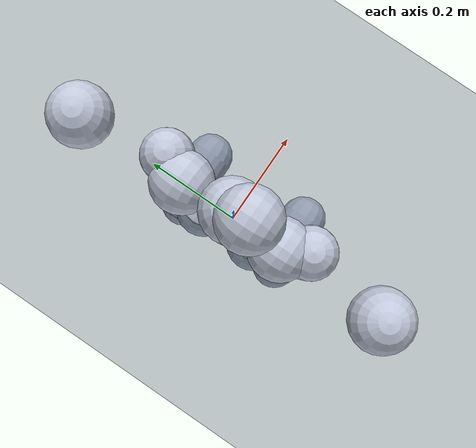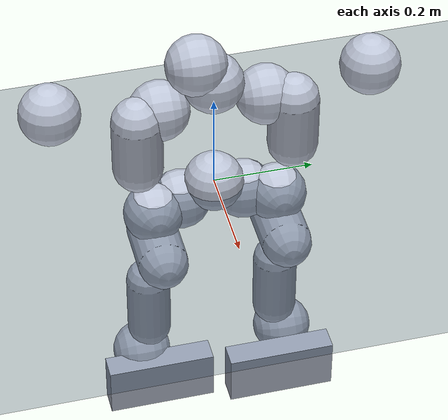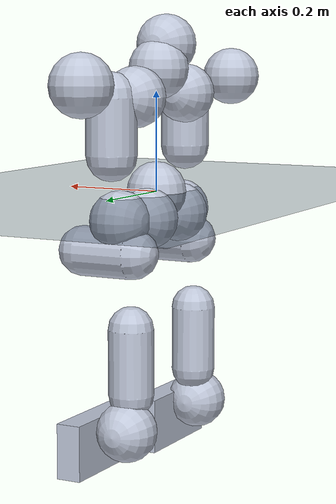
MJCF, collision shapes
<mujoco model="MOS_VIRTUAL_WAIST_PREVIEW_ONLY">
  <compiler meshdir="../../../robots/mos/retargeting/meshes" angle="radian" autolimits="true" />
  <asset>
    <texture type="skybox" builtin="gradient" rgb1="0.3 0.5 0.7" rgb2="0 0 0" width="512" height="512" />
    <texture name="texplane" type="2d" builtin="checker" rgb1=".2 .3 .4" rgb2=".1 0.15 0.2" width="512" height="512" mark="cross" markrgb=".8 .8 .8" />
    <material name="matplane" reflectance="0.3" texture="texplane" texrepeat="1 1" texuniform="true" />
    <mesh name="body" file="body.stl" scale="1 1 1" />
    <mesh name="neck" file="neck.stl" scale="1 1 1" />
    <mesh name="head" file="head.stl" scale="1 1 1" />
    <mesh name="Rshoulder" file="Rshoulder.stl" scale="1 1 1" />
    <mesh name="Rarm" file="Rarm.stl" scale="1 1 1" />
    <mesh name="Rhand" file="Rhand.stl" scale="1 1 1" />
    <mesh name="Lshoulder" file="Lshoulder.stl" scale="1 1 1" />
    <mesh name="Larm" file="Larm.stl" scale="1 1 1" />
    <mesh name="Lhand" file="Lhand.stl" scale="1 1 1" />
    <mesh name="Rhip" file="Rhip.stl" scale="1 1 1" />
    <mesh name="Rlap" file="Rlap.stl" scale="1 1 1" />
    <mesh name="Rleg1" file="Rleg1.stl" scale="1 1 1" />
    <mesh name="Rleg2" file="Rleg2.stl" scale="1 1 1" />
    <mesh name="Rankle" file="Rankle.stl" scale="1 1 1" />
    <mesh name="Rfoot" file="Rfoot.stl" scale="1 1 1" />
    <mesh name="Lhip" file="Lhip.stl" scale="1 1 1" />
    <mesh name="Llap" file="Llap.stl" scale="1 1 1" />
    <mesh name="Lleg1" file="Lleg1.stl" scale="1 1 1" />
    <mesh name="Lleg2" file="Lleg2.stl" scale="1 1 1" />
    <mesh name="Lankle" file="Lankle.stl" scale="1 1 1" />
    <mesh name="Lfoot" file="Lfoot.stl" scale="1 1 1" />
  </asset>
  <worldbody>
    <light directional="true" diffuse=".4 .4 .4" specular="0.1 0.1 0.1" pos="0 0 5.0" dir="0 0 -1" castshadow="false" />
    <light directional="true" diffuse=".6 .6 .6" specular="0.2 0.2 0.2" pos="0 0 4" dir="0 0 -1" />
    <geom name="ground" type="plane" pos="0 0 0" size="0 0 1" material="matplane" contype="1" conaffinity="1" />
    <body name="body">
      <joint name="world_joint" type="free" limited="false" />
      <body name="Rhip" pos="-0.0150000000000001 -0.0645 -0.0466" quat="1.1423625238904151e-15 1.1423625238904192e-15 0.70710678118654879 0.70710678118654624">
        <joint name="b_Rh" type="hinge" axis="0 0 1" limited="false" />
        <inertial pos="0.00165224983746645 -0.000153256597703239 -0.04716983324128" mass="0.447922579537738" fullinertia="0.00033655726061194801 0.00017598429507637101 0.00021248524943445001 6.7341063213898901e-07 -1.5485181902228599e-07 -3.79544774009115e-08" />
        <geom name="Rhip_visual" type="mesh" mesh="Rhip" contype="0" conaffinity="0" group="1" rgba="0.898039215686275 0.917647058823529 0.929411764705882 1" pos="0 0 0" quat="1 0 0 0" />
        <geom type="sphere" size="0.06" contype="1" conaffinity="1" group="3" rgba="0.75 0.78 0.85 1" />
        <body name="Rlap" pos="-0.0275 0 -0.061" quat="0.70710678118654624 0 0.70710678118654879 0">
          <joint name="Rh_Rl" type="hinge" axis="0 0 -1" limited="false" />
          <inertial pos="3.09121089836495E-10 -0.031721697647471 0.000916614078336042" mass="0.175119556314121" fullinertia="0.00015530766992431799 7.5052789038171998e-05 0.000137460344788302 1.87603158621217e-12 3.7950796870698298e-13 -3.48905088975491e-05" />
          <geom name="Rlap_visual" type="mesh" mesh="Rlap" contype="0" conaffinity="0" group="1" rgba="0.898039215686275 0.917647058823529 0.929411764705882 1" pos="0 0 0" quat="1 0 0 0" />
          <geom type="sphere" size="0.06" contype="1" conaffinity="1" group="3" rgba="0.75 0.78 0.85 1" />
          <body name="Rleg1" pos="0 -0.063 0.0280000000000001" quat="1.1423625238904151e-15 1.1423625238904192e-15 0.70710678118654879 0.70710678118654624">
            <joint name="Rl_Rl1" type="hinge" axis="0 0 -1" limited="false" />
            <inertial pos="0.000530354807968397 -0.00413771934599061 -0.0824206235447885" mass="0.966091751905849" fullinertia="0.0016552475519086901 0.00139196745796225 0.00084103918620086497 6.84286273811622e-06 -4.9741362470209701e-05 7.9840999362445995e-05" />
            <geom name="Rleg1_visual" type="mesh" mesh="Rleg1" contype="0" conaffinity="0" group="1" rgba="0.898039215686275 0.917647058823529 0.929411764705882 1" pos="0 0 0" quat="1 0 0 0" />
            <geom type="capsule" fromto="0 0 0 0 -0.11 0" size="0.05" contype="1" conaffinity="1" group="3" rgba="0.75 0.78 0.85 1" />
            <body name="Rleg2" pos="-0.00900000000000004 0 -0.146" quat="0.49999999999999817 0.5 -0.50000000000000178 -0.5">
              <joint name="Rl1_Rl2" type="hinge" axis="0 0 -1" limited="false" />
              <inertial pos="-0.00407191869623438 -0.135567799725998 -0.00123327776602503" mass="0.624084469676422" fullinertia="0.00145322270859193 0.000231800595801017 0.0016491966253583299 0.00017224973098276 -4.1760422675076197e-06 -3.1910326184903697e-05" />
              <geom name="Rleg2_visual" type="mesh" mesh="Rleg2" contype="0" conaffinity="0" group="1" rgba="0.898039215686275 0.917647058823529 0.929411764705882 1" pos="0 0 0" quat="1 0 0 0" />
              <geom type="capsule" fromto="0 0 0 0 -0.13 0" size="0.045" contype="1" conaffinity="1" group="3" rgba="0.75 0.78 0.85 1" />
              <body name="Rankle" pos="0 -0.2 0.0177999999999997" quat="1 0 0 0">
                <joint name="Rl2_Ra" type="hinge" axis="0 0 -1" limited="false" />
                <inertial pos="0.0321512482443131 -4.59865812096893E-10 -0.00303590911349036" mass="0.187524858365076" fullinertia="8.4358134856170103e-05 0.000197060970011504 0.00017685220514037899 -5.5489140558758601e-12 -5.1699062408221698e-05 4.7559976232924001e-12" />
                <geom name="Rankle_visual" type="mesh" mesh="Rankle" contype="0" conaffinity="0" group="1" rgba="0.792156862745098 0.819607843137255 0.933333333333333 1" pos="0 0 0" quat="1 0 0 0" />
                <geom type="sphere" size="0.06" contype="1" conaffinity="1" group="3" rgba="0.75 0.78 0.85 1" />
                <body name="Rfoot" pos="0.0689999999999583 0 -0.0259999999999973" quat="0.70710678118654624 0 0.70710678118654879 0">
                  <joint name="Ra_Rf" type="hinge" axis="0 0 1" limited="false" />
                  <inertial pos="8.61075291624935E-09 -0.0355878322875397 0.0190508449468564" mass="0.444249339436953" fullinertia="0.00048487415666383099 0.00060095099150306601 0.00032562953876197001 -1.04013978438541e-09 8.1792295408894495e-12 3.7593433377245e-06" />
                  <geom name="Rfoot_visual" type="mesh" mesh="Rfoot" contype="0" conaffinity="0" group="1" rgba="0.898039215686275 0.917647058823529 0.929411764705882 1" pos="0 0 0" quat="1 0 0 0" />
                  <geom type="box" size="0.11 0.055 0.025" pos="0 -0.035 -0.015" contype="1" conaffinity="1" group="3" rgba="0.75 0.78 0.85 1" />
                </body>
              </body>
            </body>
          </body>
        </body>
      </body>
      <body name="Lhip" pos="-0.0150000000000001 0.0645 -0.0466" quat="1.1423625238904151e-15 1.1423625238904192e-15 0.70710678118654879 0.70710678118654624">
        <joint name="b_Lh" type="hinge" axis="0 0 -1" limited="false" />
        <inertial pos="0.00165224894900179 -7.3220696434062E-05 0.0471698378385199" mass="0.447922591167837" fullinertia="0.00033655726870089701 0.000175984305860162 0.00021248524919222 6.7341041985942502e-07 1.54852005222124e-07 4.25225663555847e-08" />
        <geom name="Lhip_visual" type="mesh" mesh="Lhip" contype="0" conaffinity="0" group="1" rgba="0.898039215686275 0.917647058823529 0.929411764705882 1" pos="0 0 0" quat="1 0 0 0" />
        <geom type="sphere" size="0.06" contype="1" conaffinity="1" group="3" rgba="0.75 0.78 0.85 1" />
        <body name="Llap" pos="-0.027499999999988 9.99999999794776E-05 0.0609999999999988" quat="0.70710678118654624 0 0.70710678118654879 0">
          <joint name="Lh_Ll" type="hinge" axis="0 0 -1" limited="false" />
          <inertial pos="3.09119480013109E-10 -0.0317216976474549 0.00091661407832061" mass="0.175119556314121" fullinertia="0.00015530766992431799 7.5052789038171998e-05 0.00013746034478830099 1.8760313957258201e-12 3.79508076653435e-13 -3.48905088975491e-05" />
          <geom name="Llap_visual" type="mesh" mesh="Llap" contype="0" conaffinity="0" group="1" rgba="0.792156862745098 0.819607843137255 0.933333333333333 1" pos="0 0 0" quat="1 0 0 0" />
          <geom type="sphere" size="0.06" contype="1" conaffinity="1" group="3" rgba="0.75 0.78 0.85 1" />
          <body name="Lleg1" pos="0 -0.0629999999999796 0.0279999999999841" quat="1.1423625238904151e-15 1.1423625238904192e-15 0.70710678118654879 0.70710678118654624">
            <joint name="Ll_Ll1" type="hinge" axis="0 0 -1" limited="false" />
            <inertial pos="-0.000535781615046887 -0.00413973081999081 -0.0824206486794982" mass="0.966092683290071" fullinertia="0.0016552176255236601 0.0013919900662713301 0.00084105972713330399 -6.8277847711236304e-06 4.9731479575150298e-05 7.9806780796671406e-05" />
            <geom name="Lleg1_visual" type="mesh" mesh="Lleg1" contype="0" conaffinity="0" group="1" rgba="0.898039215686275 0.917647058823529 0.929411764705882 1" pos="0 0 0" quat="1 0 0 0" />
            <geom type="capsule" fromto="0 0 0 0 -0.11 0" size="0.05" contype="1" conaffinity="1" group="3" rgba="0.75 0.78 0.85 1" />
            <body name="Lleg2" pos="0.00900000000000006 0 -0.146" quat="0.49999999999999817 0.5 0.50000000000000178 0.5">
              <joint name="Ll1_Ll2" type="hinge" axis="0 0 -1" limited="false" />
              <inertial pos="0.0040643776620283 -0.135558974776272 -0.00123327766586004" mass="0.624084469535357" fullinertia="0.0014534887680419501 0.00023153451707469801 0.0016491966058949799 -0.00017220773638180001 4.1760419869312102e-06 -3.1910326286834199e-05" />
              <geom name="Lleg2_visual" type="mesh" mesh="Lleg2" contype="0" conaffinity="0" group="1" rgba="0.898039215686275 0.917647058823529 0.929411764705882 1" pos="0 0 0" quat="1 0 0 0" />
              <geom type="capsule" fromto="0 0 0 0 -0.13 0" size="0.045" contype="1" conaffinity="1" group="3" rgba="0.75 0.78 0.85 1" />
              <body name="Lankle" pos="0 -0.2 0.0177999999999994" quat="1 0 0 0">
                <joint name="Ll2_La" type="hinge" axis="0 0 -1" limited="false" />
                <inertial pos="-0.0321512482442743 6.91723612318285E-05 -0.00313158675555364" mass="0.187524858365075" fullinertia="8.4358134856170306e-05 0.000197060970011504 0.00017685220514037899 -5.5489136908371598e-12 5.1699062408221902e-05 -4.7559975480603202e-12" />
                <geom name="Lankle_visual" type="mesh" mesh="Lankle" contype="0" conaffinity="0" group="1" rgba="0.898039215686275 0.917647058823529 0.929411764705882 1" pos="0 0 0" quat="1 0 0 0" />
                <geom type="sphere" size="0.06" contype="1" conaffinity="1" group="3" rgba="0.75 0.78 0.85 1" />
                <body name="Lfoot" pos="-0.068999999995933 0.00155678563569939 -0.0281533249166232" quat="0.70710678118654624 0 0.70710678118654879 0">
                  <joint name="La_Lf" type="hinge" axis="0 0 -1" limited="false" />
                  <inertial pos="-8.61075105662579E-09 -0.0355878322875431 -0.0190508449499858" mass="0.444249339436954" fullinertia="0.00048487415666383099 0.00060095099150306503 0.00032562953876197099 1.04013978438732e-09 8.1792294030547398e-12 -3.7593433377245699e-06" />
                  <geom name="Lfoot_visual" type="mesh" mesh="Lfoot" contype="0" conaffinity="0" group="1" rgba="0.898039215686275 0.917647058823529 0.929411764705882 1" pos="0 0 0" quat="1 0 0 0" />
                  <geom type="box" size="0.11 0.055 0.025" pos="0 -0.035 -0.015" contype="1" conaffinity="1" group="3" rgba="0.75 0.78 0.85 1" />
                </body>
              </body>
            </body>
          </body>
        </body>
      </body>
      <inertial pos="0 0 0" mass="0.001" diaginertia="0.000001 0.000001 0.000001" />
      <body name="virtual_torso">
        <joint name="virtual_waist" type="ball" limited="false" />
        <inertial pos="-0.0182501208826118 -0.00190049970240902 0.0863636963583089" mass="4.35806806126274" fullinertia="0.012655421444988201 0.0083859111677895802 0.0089536020258598904 -1.9436582737215699e-06 -0.00010620088050334501 -3.4012156683631202e-07" />
        <geom name="body_visual" type="mesh" mesh="body" contype="0" conaffinity="0" group="1" rgba="0.898039215686275 0.917647058823529 0.929411764705882 1" pos="0 0 0" quat="1 0 0 0" />
        <geom type="sphere" size="0.06" contype="1" conaffinity="1" group="3" rgba="0.75 0.78 0.85 1" />
        <body name="neck" pos="-0.005 0 0.2441" quat="1 0 0 0">
          <joint name="b_n" type="hinge" axis="0 0 -1" limited="false" />
          <inertial pos="-0.000187733021383862 0.00313210111852241 0.0367257386628151" mass="0.243152851941267" fullinertia="0.000107527809141662 0.000106047679861548 0.000100507717987487 2.3284438283321199e-09 -3.7959857469986701e-07 6.8910925940301798e-06" />
          <geom name="neck_visual" type="mesh" mesh="neck" contype="0" conaffinity="0" group="1" rgba="0.898039215686275 0.917647058823529 0.929411764705882 1" pos="0 0 0" quat="1 0 0 0" />
          <geom type="sphere" size="0.06" contype="1" conaffinity="1" group="3" rgba="0.75 0.78 0.85 1" />
          <body name="head" pos="0 -0.033 0.0475" quat="0.70710678118654624 0.70710678118654879 0 0">
            <joint name="n_h" type="hinge" axis="0 0 -1" limited="false" />
            <inertial pos="-0.00148614977503109 0.0537575763860302 -0.0296115992755681" mass="0.322467436272026" fullinertia="0.000786985359858465 0.00077945250723267397 9.3920453594968994e-05 8.4862410256650706e-08 3.8891657567131497e-09 -7.5722241427996302e-06" />
            <geom name="head_visual" type="mesh" mesh="head" contype="0" conaffinity="0" group="1" rgba="0.898039215686275 0.917647058823529 0.929411764705882 1" pos="0 0 0" quat="1 0 0 0" />
            <geom type="sphere" size="0.06" contype="1" conaffinity="1" group="3" rgba="0.75 0.78 0.85 1" />
          </body>
        </body>
        <body name="Rshoulder" pos="-0.0100000000000138 -0.105000000000124 0.192100000000112" quat="1.1423625238904151e-15 1.1423625238904192e-15 -0.70710678118654879 -0.70710678118654624">
          <joint name="b_Rs" type="hinge" axis="0 0 -1" limited="false" />
          <inertial pos="-0.00132059633693976 5.62178901126614E-05 -0.0337001041277888" mass="0.244736730758832" fullinertia="0.00012937396824313599 8.7910411478203497e-05 0.000106520121171402 -8.6099113536916605e-08 1.2078891148474001e-05 -2.4422653123027001e-07" />
          <geom name="Rshoulder_visual" type="mesh" mesh="Rshoulder" contype="0" conaffinity="0" group="1" rgba="0.792156862745098 0.819607843137255 0.933333333333333 1" pos="0 0 0" quat="1 0 0 0" />
          <geom type="sphere" size="0.06" contype="1" conaffinity="1" group="3" rgba="0.75 0.78 0.85 1" />
          <body name="Rarm" pos="-0.0250000000000136 0 -0.0489999999998756" quat="0.70710678118654624 0 0.70710678118654879 0">
            <joint name="Rs_Ra" type="hinge" axis="0 0 1" limited="false" />
            <inertial pos="0.123976619673335 2.3816494963344E-05 0.0179849541694587" mass="0.505922675972045" fullinertia="0.00024917733589919101 0.00086327908773414601 0.00076979878343427896 2.4123318020310199e-05 5.1299402014640603e-05 8.9607185618386798e-06" />
            <geom name="Rarm_visual" type="mesh" mesh="Rarm" contype="0" conaffinity="0" group="1" rgba="0.898039215686275 0.917647058823529 0.929411764705882 1" pos="0 0 0" quat="1 0 0 0" />
            <geom type="capsule" fromto="0 0 0 0 -0.11 0" size="0.05" contype="1" conaffinity="1" group="3" rgba="0.75 0.78 0.85 1" />
            <body name="Rhand" pos="0.16 0.0286499999999997 0.0299999999999999" quat="0.70710678118654624 0.70710678118654879 0 0">
              <joint name="Ra_Rh" type="hinge" axis="0 0 -1" limited="false" />
              <inertial pos="0.109240589043814 0.000677471556759845 -0.00178541903634942" mass="0.273862324070502" fullinertia="5.2613968285487001e-05 0.00069957661138970095 0.00072567951936795903 4.0118960342206803e-06 2.85280392770804e-05 1.7684809100278799e-07" />
              <geom name="Rhand_visual" type="mesh" mesh="Rhand" contype="0" conaffinity="0" group="1" rgba="0.898039215686275 0.917647058823529 0.929411764705882 1" pos="0 0 0" quat="1 0 0 0" />
              <geom type="sphere" size="0.06" contype="1" conaffinity="1" group="3" rgba="0.75 0.78 0.85 1" />
            </body>
          </body>
        </body>
        <body name="Lshoulder" pos="-0.00999998124092416 0.105000001016346 0.192100005298829" quat="0.70710678118654624 0.70710678118654879 0 0">
          <joint name="b_Ls" type="hinge" axis="0 0 -1" limited="false" />
          <inertial pos="0.00132063035506957 5.63171682046171E-05 -0.0337001075421161" mass="0.244736778509988" fullinertia="0.00012937404988673599 8.7912036245165501e-05 0.000106518334762561 8.5335833881982698e-08 -1.2078942270293699e-05 -2.4164238223282003e-07" />
          <geom name="Lshoulder_visual" type="mesh" mesh="Lshoulder" contype="0" conaffinity="0" group="1" rgba="0.792156862745098 0.819607843137255 0.933333333333333 1" pos="0 0 0" quat="1 0 0 0" />
          <geom type="sphere" size="0.06" contype="1" conaffinity="1" group="3" rgba="0.75 0.78 0.85 1" />
          <body name="Larm" pos="0.0249999812409242 0 -0.0489999989836545" quat="0.70710678118654624 0 0.70710678118654879 0">
            <joint name="Ls_La" type="hinge" axis="0 0 -1" limited="false" />
            <inertial pos="0.123966814199197 2.38166802215833E-05 -0.017975150553097" mass="0.505922690783429" fullinertia="0.000249179325079772 0.00086327909773232896 0.00076979679553005297 2.4123316751308599e-05 -5.1299401252064301e-05 -8.9607186639545105e-06" />
            <geom name="Larm_visual" type="mesh" mesh="Larm" contype="0" conaffinity="0" group="1" rgba="0.898039215686275 0.917647058823529 0.929411764705882 1" pos="0 0 0" quat="1 0 0 0" />
            <geom type="capsule" fromto="0 0 0 0 -0.11 0" size="0.05" contype="1" conaffinity="1" group="3" rgba="0.75 0.78 0.85 1" />
            <body name="Lhand" pos="0.16 0.0286500000000008 -0.0299999999999989" quat="1.1423625238904151e-15 -1.1423625238904192e-15 -0.70710678118654879 0.70710678118654624">
              <joint name="La_Lh" type="hinge" axis="0 0 -1" limited="false" />
              <inertial pos="-0.109242689903327 -2.67381965457503E-08 -0.00178541891944009" mass="0.273862322424458" fullinertia="5.2589092008487398e-05 0.00069960148707308705 0.00072567951901021503 -3.81681361599439e-10 -2.85285855769356e-05 6.7151261674777606e-11" />
              <geom name="Lhand_visual" type="mesh" mesh="Lhand" contype="0" conaffinity="0" group="1" rgba="0.898039215686275 0.917647058823529 0.929411764705882 1" pos="0 0 0" quat="1 0 0 0" />
              <geom type="sphere" size="0.06" contype="1" conaffinity="1" group="3" rgba="0.75 0.78 0.85 1" />
            </body>
          </body>
        </body>
      </body>
    </body>
  </worldbody>
</mujoco>
